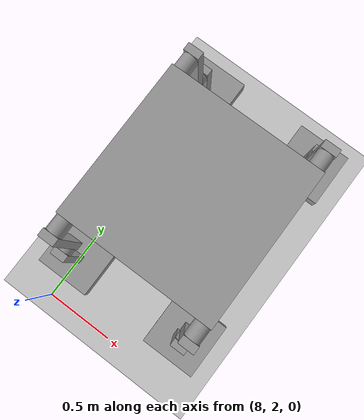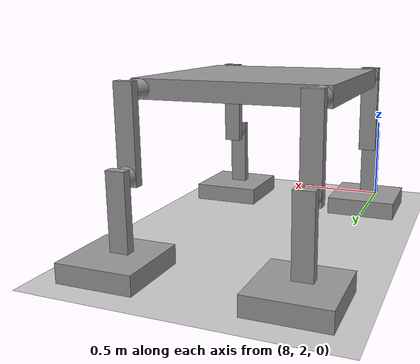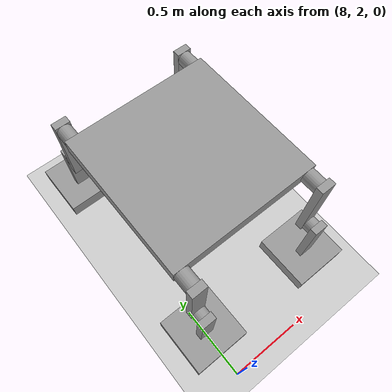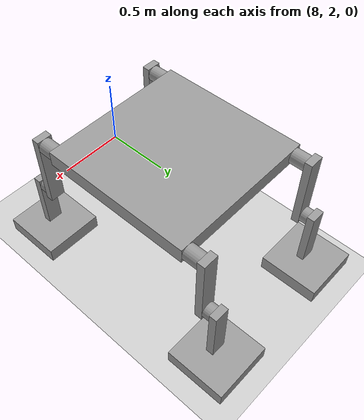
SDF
<sdf version="1.6">
 <world name="default">
  <model name="ground_plane">
   <static>1</static>
   <link name="link">
    <collision name="collision">
     <geometry><plane><normal>0 0 1</normal><size>100 100</size></plane></geometry>
     <surface>
      <contact><collide_bitmask>65535</collide_bitmask></contact>
      <friction><ode><mu>100</mu><mu2>50</mu2></ode></friction>
     </surface>
    </collision>
    <visual name="visual">
     <cast_shadows>0</cast_shadows>
     <geometry><plane><normal>0 0 1</normal><size>100 100</size></plane></geometry>
     <material>
      <script><uri>file://media/materials/scripts/gazebo.material</uri><name>Gazebo/Grey</name></script>
     </material>
    </visual>
   </link>
  </model>
  <model name="HumanoidRobot_0">
   <link name="link_0">
    <inertial>
     <mass>1</mass>
     <inertia>
      <ixx>0.166667</ixx>
      <ixy>0</ixy>
      <ixz>0</ixz>
      <iyy>0.166667</iyy>
      <iyz>0</iyz>
      <izz>0.166667</izz>
     </inertia>
    </inertial>
    <pose>0 0 1 0 -0 0</pose>
    <visual name="visual">
     <geometry><box><size>1 1 0.1</size></box></geometry>
     <material>
      <lighting>1</lighting>
      <script><uri>file://media/materials/scripts/gazebo.material</uri><name>Gazebo/Grey</name></script>
      <shader type="pixel"><normal_map>__default__</normal_map></shader>
      <ambient>0.3 0.3 0.3 1</ambient>
      <diffuse>0.7 0.7 0.7 1</diffuse>
      <specular>0.01 0.01 0.01 1</specular>
      <emissive>0 0 0 1</emissive>
     </material>
    </visual>
    <collision name="collision">
     <geometry><box><size>1 1 0.1</size></box></geometry>
     <surface>
      <friction>
       <ode><mu>1</mu><mu2>1</mu2><fdir1>0 0 0</fdir1><slip1>0</slip1><slip2>0</slip2></ode>
       <torsional>
        <coefficient>1</coefficient>
        <patch_radius>0</patch_radius>
        <surface_radius>0</surface_radius>
        <use_patch_radius>1</use_patch_radius>
        <ode><slip>0</slip></ode>
       </torsional>
      </friction>
      <bounce><restitution_coefficient>0</restitution_coefficient><threshold>1e+06</threshold></bounce>
      <contact>
       <collide_without_contact>0</collide_without_contact>
       <collide_without_contact_bitmask>1</collide_without_contact_bitmask>
       <collide_bitmask>1</collide_bitmask>
       <ode>
        <soft_cfm>0</soft_cfm>
        <soft_erp>0.2</soft_erp>
        <kp>1e+13</kp>
        <kd>1</kd>
        <max_vel>0.01</max_vel>
        <min_depth>0</min_depth>
       </ode>
       <bullet>
        <split_impulse>1</split_impulse>
        <split_impulse_penetration_threshold>-0.01</split_impulse_penetration_threshold>
        <soft_cfm>0</soft_cfm>
        <soft_erp>0.2</soft_erp>
        <kp>1e+13</kp>
        <kd>1</kd>
       </bullet>
      </contact>
     </surface>
    </collision>
   </link>
   <link name="link_0_0">
    <inertial>
     <mass>1</mass>
     <inertia><ixx>0.145833</ixx><ixy>0</ixy><ixz>0</ixz><iyy>0.145833</iyy><iyz>0</iyz><izz>0.125</izz></inertia>
    </inertial>
    <pose>-0.45 -0.550013 1 1.5707 -0 0</pose>
    <visual name="visual">
     <geometry><cylinder><radius>0.05</radius><length>0.1</length></cylinder></geometry>
     <material>
      <lighting>1</lighting>
      <script><uri>file://media/materials/scripts/gazebo.material</uri><name>Gazebo/Grey</name></script>
      <shader type="pixel"><normal_map>__default__</normal_map></shader>
      <ambient>0.3 0.3 0.3 1</ambient>
      <diffuse>0.7 0.7 0.7 1</diffuse>
      <specular>0.01 0.01 0.01 1</specular>
      <emissive>0 0 0 1</emissive>
     </material>
    </visual>
    <collision name="collision">
     <geometry><cylinder><radius>0.05</radius><length>0.1</length></cylinder></geometry>
     <surface>
      <friction>
       <ode><mu>1</mu><mu2>1</mu2><fdir1>0 0 0</fdir1><slip1>0</slip1><slip2>0</slip2></ode>
       <torsional>
        <coefficient>1</coefficient>
        <patch_radius>0</patch_radius>
        <surface_radius>0</surface_radius>
        <use_patch_radius>1</use_patch_radius>
        <ode><slip>0</slip></ode>
       </torsional>
      </friction>
      <bounce><restitution_coefficient>0</restitution_coefficient><threshold>1e+06</threshold></bounce>
      <contact>
       <collide_without_contact>0</collide_without_contact>
       <collide_without_contact_bitmask>1</collide_without_contact_bitmask>
       <collide_bitmask>1</collide_bitmask>
       <ode>
        <soft_cfm>0</soft_cfm>
        <soft_erp>0.2</soft_erp>
        <kp>1e+13</kp>
        <kd>1</kd>
        <max_vel>0.01</max_vel>
        <min_depth>0</min_depth>
       </ode>
       <bullet>
        <split_impulse>1</split_impulse>
        <split_impulse_penetration_threshold>-0.01</split_impulse_penetration_threshold>
        <soft_cfm>0</soft_cfm>
        <soft_erp>0.2</soft_erp>
        <kp>1e+13</kp>
        <kd>1</kd>
       </bullet>
      </contact>
     </surface>
    </collision>
   </link>
   <link name="link_0_0_clone">
    <inertial>
     <mass>1</mass>
     <inertia><ixx>0.145833</ixx><ixy>0</ixy><ixz>0</ixz><iyy>0.145833</iyy><iyz>0</iyz><izz>0.125</izz></inertia>
    </inertial>
    <pose>-0.45 0.550005 1 1.5707 -0 0</pose>
    <visual name="visual_0">
     <geometry><cylinder><radius>0.05</radius><length>0.1</length></cylinder></geometry>
     <material>
      <lighting>1</lighting>
      <script><uri>file://media/materials/scripts/gazebo.material</uri><name>Gazebo/Grey</name></script>
      <shader type="pixel"><normal_map>__default__</normal_map></shader>
      <ambient>0.3 0.3 0.3 1</ambient>
      <diffuse>0.7 0.7 0.7 1</diffuse>
      <specular>0.01 0.01 0.01 1</specular>
      <emissive>0 0 0 1</emissive>
     </material>
    </visual>
    <collision name="collision">
     <geometry><cylinder><radius>0.05</radius><length>0.1</length></cylinder></geometry>
     <surface>
      <friction>
       <ode><mu>1</mu><mu2>1</mu2><fdir1>0 0 0</fdir1><slip1>0</slip1><slip2>0</slip2></ode>
       <torsional>
        <coefficient>1</coefficient>
        <patch_radius>0</patch_radius>
        <surface_radius>0</surface_radius>
        <use_patch_radius>1</use_patch_radius>
        <ode><slip>0</slip></ode>
       </torsional>
      </friction>
      <bounce><restitution_coefficient>0</restitution_coefficient><threshold>1e+06</threshold></bounce>
      <contact>
       <collide_without_contact>0</collide_without_contact>
       <collide_without_contact_bitmask>1</collide_without_contact_bitmask>
       <collide_bitmask>1</collide_bitmask>
       <ode>
        <soft_cfm>0</soft_cfm>
        <soft_erp>0.2</soft_erp>
        <kp>1e+13</kp>
        <kd>1</kd>
        <max_vel>0.01</max_vel>
        <min_depth>0</min_depth>
       </ode>
       <bullet>
        <split_impulse>1</split_impulse>
        <split_impulse_penetration_threshold>-0.01</split_impulse_penetration_threshold>
        <soft_cfm>0</soft_cfm>
        <soft_erp>0.2</soft_erp>
        <kp>1e+13</kp>
        <kd>1</kd>
       </bullet>
      </contact>
     </surface>
    </collision>
   </link>
   <link name="link_0_0_clone_0">
    <inertial>
     <mass>1</mass>
     <inertia><ixx>0.145833</ixx><ixy>0</ixy><ixz>0</ixz><iyy>0.145833</iyy><iyz>0</iyz><izz>0.125</izz></inertia>
    </inertial>
    <pose>0.45 -0.550005 1 1.5707 -0 0</pose>
    <visual name="visual_0">
     <geometry><cylinder><radius>0.05</radius><length>0.1</length></cylinder></geometry>
     <material>
      <lighting>1</lighting>
      <script><uri>file://media/materials/scripts/gazebo.material</uri><name>Gazebo/Grey</name></script>
      <shader type="pixel"><normal_map>__default__</normal_map></shader>
      <ambient>0.3 0.3 0.3 1</ambient>
      <diffuse>0.7 0.7 0.7 1</diffuse>
      <specular>0.01 0.01 0.01 1</specular>
      <emissive>0 0 0 1</emissive>
     </material>
    </visual>
    <collision name="collision">
     <geometry><cylinder><radius>0.05</radius><length>0.1</length></cylinder></geometry>
     <surface>
      <friction>
       <ode><mu>1</mu><mu2>1</mu2><fdir1>0 0 0</fdir1><slip1>0</slip1><slip2>0</slip2></ode>
       <torsional>
        <coefficient>1</coefficient>
        <patch_radius>0</patch_radius>
        <surface_radius>0</surface_radius>
        <use_patch_radius>1</use_patch_radius>
        <ode><slip>0</slip></ode>
       </torsional>
      </friction>
      <bounce><restitution_coefficient>0</restitution_coefficient><threshold>1e+06</threshold></bounce>
      <contact>
       <collide_without_contact>0</collide_without_contact>
       <collide_without_contact_bitmask>1</collide_without_contact_bitmask>
       <collide_bitmask>1</collide_bitmask>
       <ode>
        <soft_cfm>0</soft_cfm>
        <soft_erp>0.2</soft_erp>
        <kp>1e+13</kp>
        <kd>1</kd>
        <max_vel>0.01</max_vel>
        <min_depth>0</min_depth>
       </ode>
       <bullet>
        <split_impulse>1</split_impulse>
        <split_impulse_penetration_threshold>-0.01</split_impulse_penetration_threshold>
        <soft_cfm>0</soft_cfm>
        <soft_erp>0.2</soft_erp>
        <kp>1e+13</kp>
        <kd>1</kd>
       </bullet>
      </contact>
     </surface>
    </collision>
   </link>
   <link name="link_0_0_clone_1">
    <inertial>
     <mass>1</mass>
     <inertia><ixx>0.145833</ixx><ixy>0</ixy><ixz>0</ixz><iyy>0.145833</iyy><iyz>0</iyz><izz>0.125</izz></inertia>
    </inertial>
    <pose>0.45 0.550005 1 1.5707 -0 0</pose>
    <visual name="visual_0">
     <geometry><cylinder><radius>0.05</radius><length>0.1</length></cylinder></geometry>
     <material>
      <lighting>1</lighting>
      <script><uri>file://media/materials/scripts/gazebo.material</uri><name>Gazebo/Grey</name></script>
      <shader type="pixel"><normal_map>__default__</normal_map></shader>
      <ambient>0.3 0.3 0.3 1</ambient>
      <diffuse>0.7 0.7 0.7 1</diffuse>
      <specular>0.01 0.01 0.01 1</specular>
      <emissive>0 0 0 1</emissive>
     </material>
    </visual>
    <collision name="collision">
     <geometry><cylinder><radius>0.05</radius><length>0.1</length></cylinder></geometry>
     <surface>
      <friction>
       <ode><mu>1</mu><mu2>1</mu2><fdir1>0 0 0</fdir1><slip1>0</slip1><slip2>0</slip2></ode>
       <torsional>
        <coefficient>1</coefficient>
        <patch_radius>0</patch_radius>
        <surface_radius>0</surface_radius>
        <use_patch_radius>1</use_patch_radius>
        <ode><slip>0</slip></ode>
       </torsional>
      </friction>
      <bounce><restitution_coefficient>0</restitution_coefficient><threshold>1e+06</threshold></bounce>
      <contact>
       <collide_without_contact>0</collide_without_contact>
       <collide_without_contact_bitmask>1</collide_without_contact_bitmask>
       <collide_bitmask>1</collide_bitmask>
       <ode>
        <soft_cfm>0</soft_cfm>
        <soft_erp>0.2</soft_erp>
        <kp>1e+13</kp>
        <kd>1</kd>
        <max_vel>0.01</max_vel>
        <min_depth>0</min_depth>
       </ode>
       <bullet>
        <split_impulse>1</split_impulse>
        <split_impulse_penetration_threshold>-0.01</split_impulse_penetration_threshold>
        <soft_cfm>0</soft_cfm>
        <soft_erp>0.2</soft_erp>
        <kp>1e+13</kp>
        <kd>1</kd>
       </bullet>
      </contact>
     </surface>
    </collision>
   </link>
   <link name="link_0_0_clone_clone">
    <inertial>
     <mass>1</mass>
     <inertia><ixx>0.145833</ixx><ixy>0</ixy><ixz>0</ixz><iyy>0.145833</iyy><iyz>0</iyz><izz>0.125</izz></inertia>
    </inertial>
    <pose>-0.45 0.650015 0.60001 1.5707 -0 0</pose>
    <visual name="visual_0">
     <geometry><cylinder><radius>0.05</radius><length>0.1</length></cylinder></geometry>
     <material>
      <lighting>1</lighting>
      <script><uri>file://media/materials/scripts/gazebo.material</uri><name>Gazebo/Grey</name></script>
      <shader type="pixel"><normal_map>__default__</normal_map></shader>
      <ambient>0.3 0.3 0.3 1</ambient>
      <diffuse>0.7 0.7 0.7 1</diffuse>
      <specular>0.01 0.01 0.01 1</specular>
      <emissive>0 0 0 1</emissive>
     </material>
    </visual>
    <collision name="collision">
     <geometry><cylinder><radius>0.05</radius><length>0.1</length></cylinder></geometry>
     <surface>
      <friction>
       <ode><mu>1</mu><mu2>1</mu2><fdir1>0 0 0</fdir1><slip1>0</slip1><slip2>0</slip2></ode>
       <torsional>
        <coefficient>1</coefficient>
        <patch_radius>0</patch_radius>
        <surface_radius>0</surface_radius>
        <use_patch_radius>1</use_patch_radius>
        <ode><slip>0</slip></ode>
       </torsional>
      </friction>
      <bounce><restitution_coefficient>0</restitution_coefficient><threshold>1e+06</threshold></bounce>
      <contact>
       <collide_without_contact>0</collide_without_contact>
       <collide_without_contact_bitmask>1</collide_without_contact_bitmask>
       <collide_bitmask>1</collide_bitmask>
       <ode>
        <soft_cfm>0</soft_cfm>
        <soft_erp>0.2</soft_erp>
        <kp>1e+13</kp>
        <kd>1</kd>
        <max_vel>0.01</max_vel>
        <min_depth>0</min_depth>
       </ode>
       <bullet>
        <split_impulse>1</split_impulse>
        <split_impulse_penetration_threshold>-0.01</split_impulse_penetration_threshold>
        <soft_cfm>0</soft_cfm>
        <soft_erp>0.2</soft_erp>
        <kp>1e+13</kp>
        <kd>1</kd>
       </bullet>
      </contact>
     </surface>
    </collision>
   </link>
   <link name="link_0_0_clone_clone_0">
    <inertial>
     <mass>1</mass>
     <inertia><ixx>0.145833</ixx><ixy>0</ixy><ixz>0</ixz><iyy>0.145833</iyy><iyz>0</iyz><izz>0.125</izz></inertia>
    </inertial>
    <pose>0.45 0.650015 0.60001 1.5707 -0 0</pose>
    <visual name="visual_0">
     <geometry><cylinder><radius>0.05</radius><length>0.1</length></cylinder></geometry>
     <material>
      <lighting>1</lighting>
      <script><uri>file://media/materials/scripts/gazebo.material</uri><name>Gazebo/Grey</name></script>
      <shader type="pixel"><normal_map>__default__</normal_map></shader>
      <ambient>0.3 0.3 0.3 1</ambient>
      <diffuse>0.7 0.7 0.7 1</diffuse>
      <specular>0.01 0.01 0.01 1</specular>
      <emissive>0 0 0 1</emissive>
     </material>
    </visual>
    <collision name="collision">
     <geometry><cylinder><radius>0.05</radius><length>0.1</length></cylinder></geometry>
     <surface>
      <friction>
       <ode><mu>1</mu><mu2>1</mu2><fdir1>0 0 0</fdir1><slip1>0</slip1><slip2>0</slip2></ode>
       <torsional>
        <coefficient>1</coefficient>
        <patch_radius>0</patch_radius>
        <surface_radius>0</surface_radius>
        <use_patch_radius>1</use_patch_radius>
        <ode><slip>0</slip></ode>
       </torsional>
      </friction>
      <bounce><restitution_coefficient>0</restitution_coefficient><threshold>1e+06</threshold></bounce>
      <contact>
       <collide_without_contact>0</collide_without_contact>
       <collide_without_contact_bitmask>1</collide_without_contact_bitmask>
       <collide_bitmask>1</collide_bitmask>
       <ode>
        <soft_cfm>0</soft_cfm>
        <soft_erp>0.2</soft_erp>
        <kp>1e+13</kp>
        <kd>1</kd>
        <max_vel>0.01</max_vel>
        <min_depth>0</min_depth>
       </ode>
       <bullet>
        <split_impulse>1</split_impulse>
        <split_impulse_penetration_threshold>-0.01</split_impulse_penetration_threshold>
        <soft_cfm>0</soft_cfm>
        <soft_erp>0.2</soft_erp>
        <kp>1e+13</kp>
        <kd>1</kd>
       </bullet>
      </contact>
     </surface>
    </collision>
   </link>
   <link name="link_0_0_clone_clone_1">
    <inertial>
     <mass>1</mass>
     <inertia><ixx>0.145833</ixx><ixy>0</ixy><ixz>0</ixz><iyy>0.145833</iyy><iyz>0</iyz><izz>0.125</izz></inertia>
    </inertial>
    <pose>0.45 -0.650015 0.60001 1.5707 -0 0</pose>
    <visual name="visual_0">
     <geometry><cylinder><radius>0.05</radius><length>0.1</length></cylinder></geometry>
     <material>
      <lighting>1</lighting>
      <script><uri>file://media/materials/scripts/gazebo.material</uri><name>Gazebo/Grey</name></script>
      <shader type="pixel"><normal_map>__default__</normal_map></shader>
      <ambient>0.3 0.3 0.3 1</ambient>
      <diffuse>0.7 0.7 0.7 1</diffuse>
      <specular>0.01 0.01 0.01 1</specular>
      <emissive>0 0 0 1</emissive>
     </material>
    </visual>
    <collision name="collision">
     <geometry><cylinder><radius>0.05</radius><length>0.1</length></cylinder></geometry>
     <surface>
      <friction>
       <ode><mu>1</mu><mu2>1</mu2><fdir1>0 0 0</fdir1><slip1>0</slip1><slip2>0</slip2></ode>
       <torsional>
        <coefficient>1</coefficient>
        <patch_radius>0</patch_radius>
        <surface_radius>0</surface_radius>
        <use_patch_radius>1</use_patch_radius>
        <ode><slip>0</slip></ode>
       </torsional>
      </friction>
      <bounce><restitution_coefficient>0</restitution_coefficient><threshold>1e+06</threshold></bounce>
      <contact>
       <collide_without_contact>0</collide_without_contact>
       <collide_without_contact_bitmask>1</collide_without_contact_bitmask>
       <collide_bitmask>1</collide_bitmask>
       <ode>
        <soft_cfm>0</soft_cfm>
        <soft_erp>0.2</soft_erp>
        <kp>1e+13</kp>
        <kd>1</kd>
        <max_vel>0.01</max_vel>
        <min_depth>0</min_depth>
       </ode>
       <bullet>
        <split_impulse>1</split_impulse>
        <split_impulse_penetration_threshold>-0.01</split_impulse_penetration_threshold>
        <soft_cfm>0</soft_cfm>
        <soft_erp>0.2</soft_erp>
        <kp>1e+13</kp>
        <kd>1</kd>
       </bullet>
      </contact>
     </surface>
    </collision>
   </link>
   <link name="link_0_0_clone_clone_2">
    <inertial>
     <mass>1</mass>
     <inertia><ixx>0.145833</ixx><ixy>0</ixy><ixz>0</ixz><iyy>0.145833</iyy><iyz>0</iyz><izz>0.125</izz></inertia>
    </inertial>
    <pose>-0.45 -0.650023 0.60001 1.5707 -0 0</pose>
    <visual name="visual_0">
     <geometry><cylinder><radius>0.05</radius><length>0.1</length></cylinder></geometry>
     <material>
      <lighting>1</lighting>
      <script><uri>file://media/materials/scripts/gazebo.material</uri><name>Gazebo/Grey</name></script>
      <shader type="pixel"><normal_map>__default__</normal_map></shader>
      <ambient>0.3 0.3 0.3 1</ambient>
      <diffuse>0.7 0.7 0.7 1</diffuse>
      <specular>0.01 0.01 0.01 1</specular>
      <emissive>0 0 0 1</emissive>
     </material>
    </visual>
    <collision name="collision">
     <geometry><cylinder><radius>0.05</radius><length>0.1</length></cylinder></geometry>
     <surface>
      <friction>
       <ode><mu>1</mu><mu2>1</mu2><fdir1>0 0 0</fdir1><slip1>0</slip1><slip2>0</slip2></ode>
       <torsional>
        <coefficient>1</coefficient>
        <patch_radius>0</patch_radius>
        <surface_radius>0</surface_radius>
        <use_patch_radius>1</use_patch_radius>
        <ode><slip>0</slip></ode>
       </torsional>
      </friction>
      <bounce><restitution_coefficient>0</restitution_coefficient><threshold>1e+06</threshold></bounce>
      <contact>
       <collide_without_contact>0</collide_without_contact>
       <collide_without_contact_bitmask>1</collide_without_contact_bitmask>
       <collide_bitmask>1</collide_bitmask>
       <ode>
        <soft_cfm>0</soft_cfm>
        <soft_erp>0.2</soft_erp>
        <kp>1e+13</kp>
        <kd>1</kd>
        <max_vel>0.01</max_vel>
        <min_depth>0</min_depth>
       </ode>
       <bullet>
        <split_impulse>1</split_impulse>
        <split_impulse_penetration_threshold>-0.01</split_impulse_penetration_threshold>
        <soft_cfm>0</soft_cfm>
        <soft_erp>0.2</soft_erp>
        <kp>1e+13</kp>
        <kd>1</kd>
       </bullet>
      </contact>
     </surface>
    </collision>
   </link>
   <link name="link_0_1">
    <inertial>
     <mass>1</mass>
     <inertia>
      <ixx>0.166667</ixx>
      <ixy>0</ixy>
      <ixz>0</ixz>
      <iyy>0.166667</iyy>
      <iyz>0</iyz>
      <izz>0.166667</izz>
     </inertia>
    </inertial>
    <pose>-0.439136 0.748383 0.200014 0 -0 0</pose>
    <visual name="visual">
     <geometry><box><size>0.4 0.4 0.1</size></box></geometry>
     <material>
      <lighting>1</lighting>
      <script><uri>file://media/materials/scripts/gazebo.material</uri><name>Gazebo/Grey</name></script>
      <shader type="pixel"><normal_map>__default__</normal_map></shader>
      <ambient>0.3 0.3 0.3 1</ambient>
      <diffuse>0.7 0.7 0.7 1</diffuse>
      <specular>0.01 0.01 0.01 1</specular>
      <emissive>0 0 0 1</emissive>
     </material>
    </visual>
    <collision name="collision">
     <geometry><box><size>0.4 0.4 0.1</size></box></geometry>
     <surface>
      <friction>
       <ode><mu>1</mu><mu2>1</mu2><fdir1>0 0 0</fdir1><slip1>0</slip1><slip2>0</slip2></ode>
       <torsional>
        <coefficient>1</coefficient>
        <patch_radius>0</patch_radius>
        <surface_radius>0</surface_radius>
        <use_patch_radius>1</use_patch_radius>
        <ode><slip>0</slip></ode>
       </torsional>
      </friction>
      <bounce><restitution_coefficient>0</restitution_coefficient><threshold>1e+06</threshold></bounce>
      <contact>
       <collide_without_contact>0</collide_without_contact>
       <collide_without_contact_bitmask>1</collide_without_contact_bitmask>
       <collide_bitmask>1</collide_bitmask>
       <ode>
        <soft_cfm>0</soft_cfm>
        <soft_erp>0.2</soft_erp>
        <kp>1e+13</kp>
        <kd>1</kd>
        <max_vel>0.01</max_vel>
        <min_depth>0</min_depth>
       </ode>
       <bullet>
        <split_impulse>1</split_impulse>
        <split_impulse_penetration_threshold>-0.01</split_impulse_penetration_threshold>
        <soft_cfm>0</soft_cfm>
        <soft_erp>0.2</soft_erp>
        <kp>1e+13</kp>
        <kd>1</kd>
       </bullet>
      </contact>
     </surface>
    </collision>
   </link>
   <link name="link_0_1_clone">
    <inertial>
     <mass>1</mass>
     <inertia>
      <ixx>0.166667</ixx>
      <ixy>0</ixy>
      <ixz>0</ixz>
      <iyy>0.166667</iyy>
      <iyz>0</iyz>
      <izz>0.166667</izz>
     </inertia>
    </inertial>
    <pose>0.460864 0.748383 0.200014 0 -0 0</pose>
    <visual name="visual_0">
     <geometry><box><size>0.4 0.4 0.1</size></box></geometry>
     <material>
      <lighting>1</lighting>
      <script><uri>file://media/materials/scripts/gazebo.material</uri><name>Gazebo/Grey</name></script>
      <shader type="pixel"><normal_map>__default__</normal_map></shader>
      <ambient>0.3 0.3 0.3 1</ambient>
      <diffuse>0.7 0.7 0.7 1</diffuse>
      <specular>0.01 0.01 0.01 1</specular>
      <emissive>0 0 0 1</emissive>
     </material>
    </visual>
    <collision name="collision">
     <geometry><box><size>0.4 0.4 0.1</size></box></geometry>
     <surface>
      <friction>
       <ode><mu>1</mu><mu2>1</mu2><fdir1>0 0 0</fdir1><slip1>0</slip1><slip2>0</slip2></ode>
       <torsional>
        <coefficient>1</coefficient>
        <patch_radius>0</patch_radius>
        <surface_radius>0</surface_radius>
        <use_patch_radius>1</use_patch_radius>
        <ode><slip>0</slip></ode>
       </torsional>
      </friction>
      <bounce><restitution_coefficient>0</restitution_coefficient><threshold>1e+06</threshold></bounce>
      <contact>
       <collide_without_contact>0</collide_without_contact>
       <collide_without_contact_bitmask>1</collide_without_contact_bitmask>
       <collide_bitmask>1</collide_bitmask>
       <ode>
        <soft_cfm>0</soft_cfm>
        <soft_erp>0.2</soft_erp>
        <kp>1e+13</kp>
        <kd>1</kd>
        <max_vel>0.01</max_vel>
        <min_depth>0</min_depth>
       </ode>
       <bullet>
        <split_impulse>1</split_impulse>
        <split_impulse_penetration_threshold>-0.01</split_impulse_penetration_threshold>
        <soft_cfm>0</soft_cfm>
        <soft_erp>0.2</soft_erp>
        <kp>1e+13</kp>
        <kd>1</kd>
       </bullet>
      </contact>
     </surface>
    </collision>
   </link>
   <link name="link_0_1_clone_0">
    <inertial>
     <mass>1</mass>
     <inertia>
      <ixx>0.166667</ixx>
      <ixy>0</ixy>
      <ixz>0</ixz>
      <iyy>0.166667</iyy>
      <iyz>0</iyz>
      <izz>0.166667</izz>
     </inertia>
    </inertial>
    <pose>0.460864 -0.701655 0.200014 0 -0 0</pose>
    <visual name="visual_0">
     <geometry><box><size>0.4 0.4 0.1</size></box></geometry>
     <material>
      <lighting>1</lighting>
      <script><uri>file://media/materials/scripts/gazebo.material</uri><name>Gazebo/Grey</name></script>
      <shader type="pixel"><normal_map>__default__</normal_map></shader>
      <ambient>0.3 0.3 0.3 1</ambient>
      <diffuse>0.7 0.7 0.7 1</diffuse>
      <specular>0.01 0.01 0.01 1</specular>
      <emissive>0 0 0 1</emissive>
     </material>
    </visual>
    <collision name="collision">
     <geometry><box><size>0.4 0.4 0.1</size></box></geometry>
     <surface>
      <friction>
       <ode><mu>1</mu><mu2>1</mu2><fdir1>0 0 0</fdir1><slip1>0</slip1><slip2>0</slip2></ode>
       <torsional>
        <coefficient>1</coefficient>
        <patch_radius>0</patch_radius>
        <surface_radius>0</surface_radius>
        <use_patch_radius>1</use_patch_radius>
        <ode><slip>0</slip></ode>
       </torsional>
      </friction>
      <bounce><restitution_coefficient>0</restitution_coefficient><threshold>1e+06</threshold></bounce>
      <contact>
       <collide_without_contact>0</collide_without_contact>
       <collide_without_contact_bitmask>1</collide_without_contact_bitmask>
       <collide_bitmask>1</collide_bitmask>
       <ode>
        <soft_cfm>0</soft_cfm>
        <soft_erp>0.2</soft_erp>
        <kp>1e+13</kp>
        <kd>1</kd>
        <max_vel>0.01</max_vel>
        <min_depth>0</min_depth>
       </ode>
       <bullet>
        <split_impulse>1</split_impulse>
        <split_impulse_penetration_threshold>-0.01</split_impulse_penetration_threshold>
        <soft_cfm>0</soft_cfm>
        <soft_erp>0.2</soft_erp>
        <kp>1e+13</kp>
        <kd>1</kd>
       </bullet>
      </contact>
     </surface>
    </collision>
   </link>
   <link name="link_0_1_clone_1">
    <inertial>
     <mass>1</mass>
     <inertia>
      <ixx>0.166667</ixx>
      <ixy>0</ixy>
      <ixz>0</ixz>
      <iyy>0.166667</iyy>
      <iyz>0</iyz>
      <izz>0.166667</izz>
     </inertia>
    </inertial>
    <pose>-0.439136 -0.701664 0.200014 0 -0 0</pose>
    <visual name="visual_0">
     <geometry><box><size>0.4 0.4 0.1</size></box></geometry>
     <material>
      <lighting>1</lighting>
      <script><uri>file://media/materials/scripts/gazebo.material</uri><name>Gazebo/Grey</name></script>
      <shader type="pixel"><normal_map>__default__</normal_map></shader>
      <ambient>0.3 0.3 0.3 1</ambient>
      <diffuse>0.7 0.7 0.7 1</diffuse>
      <specular>0.01 0.01 0.01 1</specular>
      <emissive>0 0 0 1</emissive>
     </material>
    </visual>
    <collision name="collision">
     <geometry><box><size>0.4 0.4 0.1</size></box></geometry>
     <surface>
      <friction>
       <ode><mu>1</mu><mu2>1</mu2><fdir1>0 0 0</fdir1><slip1>0</slip1><slip2>0</slip2></ode>
       <torsional>
        <coefficient>1</coefficient>
        <patch_radius>0</patch_radius>
        <surface_radius>0</surface_radius>
        <use_patch_radius>1</use_patch_radius>
        <ode><slip>0</slip></ode>
       </torsional>
      </friction>
      <bounce><restitution_coefficient>0</restitution_coefficient><threshold>1e+06</threshold></bounce>
      <contact>
       <collide_without_contact>0</collide_without_contact>
       <collide_without_contact_bitmask>1</collide_without_contact_bitmask>
       <collide_bitmask>1</collide_bitmask>
       <ode>
        <soft_cfm>0</soft_cfm>
        <soft_erp>0.2</soft_erp>
        <kp>1e+13</kp>
        <kd>1</kd>
        <max_vel>0.01</max_vel>
        <min_depth>0</min_depth>
       </ode>
       <bullet>
        <split_impulse>1</split_impulse>
        <split_impulse_penetration_threshold>-0.01</split_impulse_penetration_threshold>
        <soft_cfm>0</soft_cfm>
        <soft_erp>0.2</soft_erp>
        <kp>1e+13</kp>
        <kd>1</kd>
       </bullet>
      </contact>
     </surface>
    </collision>
   </link>
   <link name="link_1">
    <inertial>
     <mass>1</mass>
     <inertia>
      <ixx>0.166667</ixx>
      <ixy>0</ixy>
      <ixz>0</ixz>
      <iyy>0.166667</iyy>
      <iyz>0</iyz>
      <izz>0.166667</izz>
     </inertia>
    </inertial>
    <pose>-0.45 0.62501 0.800005 0 -0 0</pose>
    <visual name="visual">
     <geometry><box><size>0.1 0.05 0.5</size></box></geometry>
     <material>
      <lighting>1</lighting>
      <script><uri>file://media/materials/scripts/gazebo.material</uri><name>Gazebo/Grey</name></script>
      <shader type="pixel"><normal_map>__default__</normal_map></shader>
      <ambient>0.3 0.3 0.3 1</ambient>
      <diffuse>0.7 0.7 0.7 1</diffuse>
      <specular>0.01 0.01 0.01 1</specular>
      <emissive>0 0 0 1</emissive>
     </material>
    </visual>
    <collision name="collision">
     <geometry><box><size>0.1 0.05 0.5</size></box></geometry>
     <surface>
      <friction>
       <ode><mu>1</mu><mu2>1</mu2><fdir1>0 0 0</fdir1><slip1>0</slip1><slip2>0</slip2></ode>
       <torsional>
        <coefficient>1</coefficient>
        <patch_radius>0</patch_radius>
        <surface_radius>0</surface_radius>
        <use_patch_radius>1</use_patch_radius>
        <ode><slip>0</slip></ode>
       </torsional>
      </friction>
      <bounce><restitution_coefficient>0</restitution_coefficient><threshold>1e+06</threshold></bounce>
      <contact>
       <collide_without_contact>0</collide_without_contact>
       <collide_without_contact_bitmask>1</collide_without_contact_bitmask>
       <collide_bitmask>1</collide_bitmask>
       <ode>
        <soft_cfm>0</soft_cfm>
        <soft_erp>0.2</soft_erp>
        <kp>1e+13</kp>
        <kd>1</kd>
        <max_vel>0.01</max_vel>
        <min_depth>0</min_depth>
       </ode>
       <bullet>
        <split_impulse>1</split_impulse>
        <split_impulse_penetration_threshold>-0.01</split_impulse_penetration_threshold>
        <soft_cfm>0</soft_cfm>
        <soft_erp>0.2</soft_erp>
        <kp>1e+13</kp>
        <kd>1</kd>
       </bullet>
      </contact>
     </surface>
    </collision>
   </link>
   <link name="link_1_clone">
    <inertial>
     <mass>1</mass>
     <inertia>
      <ixx>0.166667</ixx>
      <ixy>0</ixy>
      <ixz>0</ixz>
      <iyy>0.166667</iyy>
      <iyz>0</iyz>
      <izz>0.166667</izz>
     </inertia>
    </inertial>
    <pose>0.45 0.62501 0.800005 0 -0 0</pose>
    <visual name="visual">
     <geometry><box><size>0.1 0.05 0.5</size></box></geometry>
     <material>
      <lighting>1</lighting>
      <script><uri>file://media/materials/scripts/gazebo.material</uri><name>Gazebo/Grey</name></script>
      <shader type="pixel"><normal_map>__default__</normal_map></shader>
      <ambient>0.3 0.3 0.3 1</ambient>
      <diffuse>0.7 0.7 0.7 1</diffuse>
      <specular>0.01 0.01 0.01 1</specular>
      <emissive>0 0 0 1</emissive>
     </material>
    </visual>
    <collision name="collision">
     <geometry><box><size>0.1 0.05 0.5</size></box></geometry>
     <surface>
      <friction>
       <ode><mu>1</mu><mu2>1</mu2><fdir1>0 0 0</fdir1><slip1>0</slip1><slip2>0</slip2></ode>
       <torsional>
        <coefficient>1</coefficient>
        <patch_radius>0</patch_radius>
        <surface_radius>0</surface_radius>
        <use_patch_radius>1</use_patch_radius>
        <ode><slip>0</slip></ode>
       </torsional>
      </friction>
      <bounce><restitution_coefficient>0</restitution_coefficient><threshold>1e+06</threshold></bounce>
      <contact>
       <collide_without_contact>0</collide_without_contact>
       <collide_without_contact_bitmask>1</collide_without_contact_bitmask>
       <collide_bitmask>1</collide_bitmask>
       <ode>
        <soft_cfm>0</soft_cfm>
        <soft_erp>0.2</soft_erp>
        <kp>1e+13</kp>
        <kd>1</kd>
        <max_vel>0.01</max_vel>
        <min_depth>0</min_depth>
       </ode>
       <bullet>
        <split_impulse>1</split_impulse>
        <split_impulse_penetration_threshold>-0.01</split_impulse_penetration_threshold>
        <soft_cfm>0</soft_cfm>
        <soft_erp>0.2</soft_erp>
        <kp>1e+13</kp>
        <kd>1</kd>
       </bullet>
      </contact>
     </surface>
    </collision>
   </link>
   <link name="link_1_clone_0">
    <inertial>
     <mass>1</mass>
     <inertia>
      <ixx>0.166667</ixx>
      <ixy>0</ixy>
      <ixz>0</ixz>
      <iyy>0.166667</iyy>
      <iyz>0</iyz>
      <izz>0.166667</izz>
     </inertia>
    </inertial>
    <pose>0.45 -0.62501 0.800005 0 -0 0</pose>
    <visual name="visual">
     <geometry><box><size>0.1 0.05 0.5</size></box></geometry>
     <material>
      <lighting>1</lighting>
      <script><uri>file://media/materials/scripts/gazebo.material</uri><name>Gazebo/Grey</name></script>
      <shader type="pixel"><normal_map>__default__</normal_map></shader>
      <ambient>0.3 0.3 0.3 1</ambient>
      <diffuse>0.7 0.7 0.7 1</diffuse>
      <specular>0.01 0.01 0.01 1</specular>
      <emissive>0 0 0 1</emissive>
     </material>
    </visual>
    <collision name="collision">
     <geometry><box><size>0.1 0.05 0.5</size></box></geometry>
     <surface>
      <friction>
       <ode><mu>1</mu><mu2>1</mu2><fdir1>0 0 0</fdir1><slip1>0</slip1><slip2>0</slip2></ode>
       <torsional>
        <coefficient>1</coefficient>
        <patch_radius>0</patch_radius>
        <surface_radius>0</surface_radius>
        <use_patch_radius>1</use_patch_radius>
        <ode><slip>0</slip></ode>
       </torsional>
      </friction>
      <bounce><restitution_coefficient>0</restitution_coefficient><threshold>1e+06</threshold></bounce>
      <contact>
       <collide_without_contact>0</collide_without_contact>
       <collide_without_contact_bitmask>1</collide_without_contact_bitmask>
       <collide_bitmask>1</collide_bitmask>
       <ode>
        <soft_cfm>0</soft_cfm>
        <soft_erp>0.2</soft_erp>
        <kp>1e+13</kp>
        <kd>1</kd>
        <max_vel>0.01</max_vel>
        <min_depth>0</min_depth>
       </ode>
       <bullet>
        <split_impulse>1</split_impulse>
        <split_impulse_penetration_threshold>-0.01</split_impulse_penetration_threshold>
        <soft_cfm>0</soft_cfm>
        <soft_erp>0.2</soft_erp>
        <kp>1e+13</kp>
        <kd>1</kd>
       </bullet>
      </contact>
     </surface>
    </collision>
   </link>
   <link name="link_1_clone_1">
    <inertial>
     <mass>1</mass>
     <inertia>
      <ixx>0.166667</ixx>
      <ixy>0</ixy>
      <ixz>0</ixz>
      <iyy>0.166667</iyy>
      <iyz>0</iyz>
      <izz>0.166667</izz>
     </inertia>
    </inertial>
    <pose>-0.45 -0.625018 0.800005 0 -0 0</pose>
    <visual name="visual">
     <geometry><box><size>0.1 0.05 0.5</size></box></geometry>
     <material>
      <lighting>1</lighting>
      <script><uri>file://media/materials/scripts/gazebo.material</uri><name>Gazebo/Grey</name></script>
      <shader type="pixel"><normal_map>__default__</normal_map></shader>
      <ambient>0.3 0.3 0.3 1</ambient>
      <diffuse>0.7 0.7 0.7 1</diffuse>
      <specular>0.01 0.01 0.01 1</specular>
      <emissive>0 0 0 1</emissive>
     </material>
    </visual>
    <collision name="collision">
     <geometry><box><size>0.1 0.05 0.5</size></box></geometry>
     <surface>
      <friction>
       <ode><mu>1</mu><mu2>1</mu2><fdir1>0 0 0</fdir1><slip1>0</slip1><slip2>0</slip2></ode>
       <torsional>
        <coefficient>1</coefficient>
        <patch_radius>0</patch_radius>
        <surface_radius>0</surface_radius>
        <use_patch_radius>1</use_patch_radius>
        <ode><slip>0</slip></ode>
       </torsional>
      </friction>
      <bounce><restitution_coefficient>0</restitution_coefficient><threshold>1e+06</threshold></bounce>
      <contact>
       <collide_without_contact>0</collide_without_contact>
       <collide_without_contact_bitmask>1</collide_without_contact_bitmask>
       <collide_bitmask>1</collide_bitmask>
       <ode>
        <soft_cfm>0</soft_cfm>
        <soft_erp>0.2</soft_erp>
        <kp>1e+13</kp>
        <kd>1</kd>
        <max_vel>0.01</max_vel>
        <min_depth>0</min_depth>
       </ode>
       <bullet>
        <split_impulse>1</split_impulse>
        <split_impulse_penetration_threshold>-0.01</split_impulse_penetration_threshold>
        <soft_cfm>0</soft_cfm>
        <soft_erp>0.2</soft_erp>
        <kp>1e+13</kp>
        <kd>1</kd>
       </bullet>
      </contact>
     </surface>
    </collision>
   </link>
   <link name="link_1_clone_2">
    <inertial>
     <mass>1</mass>
     <inertia>
      <ixx>0.166667</ixx>
      <ixy>0</ixy>
      <ixz>0</ixz>
      <iyy>0.166667</iyy>
      <iyz>0</iyz>
      <izz>0.166667</izz>
     </inertia>
    </inertial>
    <pose>-0.45 0.725019 0.400014 0 -0 0</pose>
    <visual name="visual">
     <geometry><box><size>0.1 0.05 0.5</size></box></geometry>
     <material>
      <lighting>1</lighting>
      <script><uri>file://media/materials/scripts/gazebo.material</uri><name>Gazebo/Grey</name></script>
      <shader type="pixel"><normal_map>__default__</normal_map></shader>
      <ambient>0.3 0.3 0.3 1</ambient>
      <diffuse>0.7 0.7 0.7 1</diffuse>
      <specular>0.01 0.01 0.01 1</specular>
      <emissive>0 0 0 1</emissive>
     </material>
    </visual>
    <collision name="collision">
     <geometry><box><size>0.1 0.05 0.5</size></box></geometry>
     <surface>
      <friction>
       <ode><mu>1</mu><mu2>1</mu2><fdir1>0 0 0</fdir1><slip1>0</slip1><slip2>0</slip2></ode>
       <torsional>
        <coefficient>1</coefficient>
        <patch_radius>0</patch_radius>
        <surface_radius>0</surface_radius>
        <use_patch_radius>1</use_patch_radius>
        <ode><slip>0</slip></ode>
       </torsional>
      </friction>
      <bounce><restitution_coefficient>0</restitution_coefficient><threshold>1e+06</threshold></bounce>
      <contact>
       <collide_without_contact>0</collide_without_contact>
       <collide_without_contact_bitmask>1</collide_without_contact_bitmask>
       <collide_bitmask>1</collide_bitmask>
       <ode>
        <soft_cfm>0</soft_cfm>
        <soft_erp>0.2</soft_erp>
        <kp>1e+13</kp>
        <kd>1</kd>
        <max_vel>0.01</max_vel>
        <min_depth>0</min_depth>
       </ode>
       <bullet>
        <split_impulse>1</split_impulse>
        <split_impulse_penetration_threshold>-0.01</split_impulse_penetration_threshold>
        <soft_cfm>0</soft_cfm>
        <soft_erp>0.2</soft_erp>
        <kp>1e+13</kp>
        <kd>1</kd>
       </bullet>
      </contact>
     </surface>
    </collision>
   </link>
   <link name="link_1_clone_3">
    <inertial>
     <mass>1</mass>
     <inertia>
      <ixx>0.166667</ixx>
      <ixy>0</ixy>
      <ixz>0</ixz>
      <iyy>0.166667</iyy>
      <iyz>0</iyz>
      <izz>0.166667</izz>
     </inertia>
    </inertial>
    <pose>0.45 0.725019 0.400014 0 -0 0</pose>
    <visual name="visual">
     <geometry><box><size>0.1 0.05 0.5</size></box></geometry>
     <material>
      <lighting>1</lighting>
      <script><uri>file://media/materials/scripts/gazebo.material</uri><name>Gazebo/Grey</name></script>
      <shader type="pixel"><normal_map>__default__</normal_map></shader>
      <ambient>0.3 0.3 0.3 1</ambient>
      <diffuse>0.7 0.7 0.7 1</diffuse>
      <specular>0.01 0.01 0.01 1</specular>
      <emissive>0 0 0 1</emissive>
     </material>
    </visual>
    <collision name="collision">
     <geometry><box><size>0.1 0.05 0.5</size></box></geometry>
     <surface>
      <friction>
       <ode><mu>1</mu><mu2>1</mu2><fdir1>0 0 0</fdir1><slip1>0</slip1><slip2>0</slip2></ode>
       <torsional>
        <coefficient>1</coefficient>
        <patch_radius>0</patch_radius>
        <surface_radius>0</surface_radius>
        <use_patch_radius>1</use_patch_radius>
        <ode><slip>0</slip></ode>
       </torsional>
      </friction>
      <bounce><restitution_coefficient>0</restitution_coefficient><threshold>1e+06</threshold></bounce>
      <contact>
       <collide_without_contact>0</collide_without_contact>
       <collide_without_contact_bitmask>1</collide_without_contact_bitmask>
       <collide_bitmask>1</collide_bitmask>
       <ode>
        <soft_cfm>0</soft_cfm>
        <soft_erp>0.2</soft_erp>
        <kp>1e+13</kp>
        <kd>1</kd>
        <max_vel>0.01</max_vel>
        <min_depth>0</min_depth>
       </ode>
       <bullet>
        <split_impulse>1</split_impulse>
        <split_impulse_penetration_threshold>-0.01</split_impulse_penetration_threshold>
        <soft_cfm>0</soft_cfm>
        <soft_erp>0.2</soft_erp>
        <kp>1e+13</kp>
        <kd>1</kd>
       </bullet>
      </contact>
     </surface>
    </collision>
   </link>
   <link name="link_1_clone_4">
    <inertial>
     <mass>1</mass>
     <inertia>
      <ixx>0.166667</ixx>
      <ixy>0</ixy>
      <ixz>0</ixz>
      <iyy>0.166667</iyy>
      <iyz>0</iyz>
      <izz>0.166667</izz>
     </inertia>
    </inertial>
    <pose>0.45 -0.725019 0.400014 0 -0 0</pose>
    <visual name="visual">
     <geometry><box><size>0.1 0.05 0.5</size></box></geometry>
     <material>
      <lighting>1</lighting>
      <script><uri>file://media/materials/scripts/gazebo.material</uri><name>Gazebo/Grey</name></script>
      <shader type="pixel"><normal_map>__default__</normal_map></shader>
      <ambient>0.3 0.3 0.3 1</ambient>
      <diffuse>0.7 0.7 0.7 1</diffuse>
      <specular>0.01 0.01 0.01 1</specular>
      <emissive>0 0 0 1</emissive>
     </material>
    </visual>
    <collision name="collision">
     <geometry><box><size>0.1 0.05 0.5</size></box></geometry>
     <surface>
      <friction>
       <ode><mu>1</mu><mu2>1</mu2><fdir1>0 0 0</fdir1><slip1>0</slip1><slip2>0</slip2></ode>
       <torsional>
        <coefficient>1</coefficient>
        <patch_radius>0</patch_radius>
        <surface_radius>0</surface_radius>
        <use_patch_radius>1</use_patch_radius>
        <ode><slip>0</slip></ode>
       </torsional>
      </friction>
      <bounce><restitution_coefficient>0</restitution_coefficient><threshold>1e+06</threshold></bounce>
      <contact>
       <collide_without_contact>0</collide_without_contact>
       <collide_without_contact_bitmask>1</collide_without_contact_bitmask>
       <collide_bitmask>1</collide_bitmask>
       <ode>
        <soft_cfm>0</soft_cfm>
        <soft_erp>0.2</soft_erp>
        <kp>1e+13</kp>
        <kd>1</kd>
        <max_vel>0.01</max_vel>
        <min_depth>0</min_depth>
       </ode>
       <bullet>
        <split_impulse>1</split_impulse>
        <split_impulse_penetration_threshold>-0.01</split_impulse_penetration_threshold>
        <soft_cfm>0</soft_cfm>
        <soft_erp>0.2</soft_erp>
        <kp>1e+13</kp>
        <kd>1</kd>
       </bullet>
      </contact>
     </surface>
    </collision>
   </link>
   <link name="link_1_clone_5">
    <inertial>
     <mass>1</mass>
     <inertia>
      <ixx>0.166667</ixx>
      <ixy>0</ixy>
      <ixz>0</ixz>
      <iyy>0.166667</iyy>
      <iyz>0</iyz>
      <izz>0.166667</izz>
     </inertia>
    </inertial>
    <pose>-0.45 -0.725028 0.400014 0 -0 0</pose>
    <visual name="visual">
     <geometry><box><size>0.1 0.05 0.5</size></box></geometry>
     <material>
      <lighting>1</lighting>
      <script><uri>file://media/materials/scripts/gazebo.material</uri><name>Gazebo/Grey</name></script>
      <shader type="pixel"><normal_map>__default__</normal_map></shader>
      <ambient>0.3 0.3 0.3 1</ambient>
      <diffuse>0.7 0.7 0.7 1</diffuse>
      <specular>0.01 0.01 0.01 1</specular>
      <emissive>0 0 0 1</emissive>
     </material>
    </visual>
    <collision name="collision">
     <geometry><box><size>0.1 0.05 0.5</size></box></geometry>
     <surface>
      <friction>
       <ode><mu>1</mu><mu2>1</mu2><fdir1>0 0 0</fdir1><slip1>0</slip1><slip2>0</slip2></ode>
       <torsional>
        <coefficient>1</coefficient>
        <patch_radius>0</patch_radius>
        <surface_radius>0</surface_radius>
        <use_patch_radius>1</use_patch_radius>
        <ode><slip>0</slip></ode>
       </torsional>
      </friction>
      <bounce><restitution_coefficient>0</restitution_coefficient><threshold>1e+06</threshold></bounce>
      <contact>
       <collide_without_contact>0</collide_without_contact>
       <collide_without_contact_bitmask>1</collide_without_contact_bitmask>
       <collide_bitmask>1</collide_bitmask>
       <ode>
        <soft_cfm>0</soft_cfm>
        <soft_erp>0.2</soft_erp>
        <kp>1e+13</kp>
        <kd>1</kd>
        <max_vel>0.01</max_vel>
        <min_depth>0</min_depth>
       </ode>
       <bullet>
        <split_impulse>1</split_impulse>
        <split_impulse_penetration_threshold>-0.01</split_impulse_penetration_threshold>
        <soft_cfm>0</soft_cfm>
        <soft_erp>0.2</soft_erp>
        <kp>1e+13</kp>
        <kd>1</kd>
       </bullet>
      </contact>
     </surface>
    </collision>
   </link>
   <joint name="link_0_0_JOINT_8" type="fixed">
    <parent>link_0_0</parent>
    <child>link_1_clone_1</child>
    <physics>
     <ode><limit><cfm>0</cfm><erp>0.2</erp></limit><suspension><cfm>0</cfm><erp>0.2</erp></suspension></ode>
    </physics>
   </joint>
   <joint name="link_0_0_clone_0_JOINT_7" type="fixed">
    <parent>link_0_0_clone_0</parent>
    <child>link_1_clone_0</child>
    <physics>
     <ode><limit><cfm>0</cfm><erp>0.2</erp></limit><suspension><cfm>0</cfm><erp>0.2</erp></suspension></ode>
    </physics>
   </joint>
   <joint name="link_0_0_clone_1_JOINT_6" type="fixed">
    <parent>link_0_0_clone_1</parent>
    <child>link_1_clone</child>
    <physics>
     <ode><limit><cfm>0</cfm><erp>0.2</erp></limit><suspension><cfm>0</cfm><erp>0.2</erp></suspension></ode>
    </physics>
   </joint>
   <joint name="link_0_0_clone_JOINT_5" type="fixed">
    <parent>link_0_0_clone</parent>
    <child>link_1</child>
    <physics>
     <ode><limit><cfm>0</cfm><erp>0.2</erp></limit><suspension><cfm>0</cfm><erp>0.2</erp></suspension></ode>
    </physics>
   </joint>
   <joint name="link_0_0_clone_clone_0_JOINT_18" type="revolute">
    <parent>link_0_0_clone_clone_0</parent>
    <child>link_1_clone_3</child>
    <axis>
     <xyz>0 0 1</xyz>
     <use_parent_model_frame>0</use_parent_model_frame>
     <limit>
      <lower>-1.79769e+308</lower>
      <upper>1.79769e+308</upper>
      <effort>-1</effort>
      <velocity>-1</velocity>
     </limit>
     <dynamics>
      <spring_reference>0</spring_reference>
      <spring_stiffness>0</spring_stiffness>
      <damping>0</damping>
      <friction>0</friction>
     </dynamics>
    </axis>
    <physics>
     <ode><limit><cfm>0</cfm><erp>0.2</erp></limit><suspension><cfm>0</cfm><erp>0.2</erp></suspension></ode>
    </physics>
   </joint>
   <joint name="link_0_0_clone_clone_2_JOINT_20" type="revolute">
    <parent>link_0_0_clone_clone_2</parent>
    <child>link_1_clone_5</child>
    <axis>
     <xyz>0 0 1</xyz>
     <use_parent_model_frame>0</use_parent_model_frame>
     <limit>
      <lower>-1.79769e+308</lower>
      <upper>1.79769e+308</upper>
      <effort>-1</effort>
      <velocity>-1</velocity>
     </limit>
     <dynamics>
      <spring_reference>0</spring_reference>
      <spring_stiffness>0</spring_stiffness>
      <damping>0</damping>
      <friction>0</friction>
     </dynamics>
    </axis>
    <physics>
     <ode><limit><cfm>0</cfm><erp>0.2</erp></limit><suspension><cfm>0</cfm><erp>0.2</erp></suspension></ode>
    </physics>
   </joint>
   <joint name="link_0_JOINT_1" type="revolute">
    <parent>link_0</parent>
    <child>link_0_0</child>
    <axis>
     <xyz>0 0 1</xyz>
     <use_parent_model_frame>0</use_parent_model_frame>
     <limit>
      <lower>-1.79769e+308</lower>
      <upper>1.79769e+308</upper>
      <effort>-1</effort>
      <velocity>-1</velocity>
     </limit>
     <dynamics>
      <spring_reference>0</spring_reference>
      <spring_stiffness>0</spring_stiffness>
      <damping>0</damping>
      <friction>0</friction>
     </dynamics>
    </axis>
    <physics>
     <ode><limit><cfm>0</cfm><erp>0.2</erp></limit><suspension><cfm>0</cfm><erp>0.2</erp></suspension></ode>
    </physics>
   </joint>
   <joint name="link_0_JOINT_2" type="revolute">
    <parent>link_0</parent>
    <child>link_0_0_clone</child>
    <axis>
     <xyz>0 0 1</xyz>
     <use_parent_model_frame>0</use_parent_model_frame>
     <limit>
      <lower>-1.79769e+308</lower>
      <upper>1.79769e+308</upper>
      <effort>-1</effort>
      <velocity>-1</velocity>
     </limit>
     <dynamics>
      <spring_reference>0</spring_reference>
      <spring_stiffness>0</spring_stiffness>
      <damping>0</damping>
      <friction>0</friction>
     </dynamics>
    </axis>
    <physics>
     <ode><limit><cfm>0</cfm><erp>0.2</erp></limit><suspension><cfm>0</cfm><erp>0.2</erp></suspension></ode>
    </physics>
   </joint>
   <joint name="link_0_JOINT_3" type="revolute">
    <parent>link_0</parent>
    <child>link_0_0_clone_0</child>
    <axis>
     <xyz>1 0 0</xyz>
     <use_parent_model_frame>0</use_parent_model_frame>
     <limit>
      <lower>-1.79769e+308</lower>
      <upper>1.79769e+308</upper>
      <effort>-1</effort>
      <velocity>-1</velocity>
     </limit>
     <dynamics>
      <spring_reference>0</spring_reference>
      <spring_stiffness>0</spring_stiffness>
      <damping>0</damping>
      <friction>0</friction>
     </dynamics>
    </axis>
    <physics>
     <ode><limit><cfm>0</cfm><erp>0.2</erp></limit><suspension><cfm>0</cfm><erp>0.2</erp></suspension></ode>
    </physics>
   </joint>
   <joint name="link_0_JOINT_4" type="revolute">
    <parent>link_0</parent>
    <child>link_0_0_clone_1</child>
    <axis>
     <xyz>1 0 0</xyz>
     <use_parent_model_frame>0</use_parent_model_frame>
     <limit>
      <lower>-1.79769e+308</lower>
      <upper>1.79769e+308</upper>
      <effort>-1</effort>
      <velocity>-1</velocity>
     </limit>
     <dynamics>
      <spring_reference>0</spring_reference>
      <spring_stiffness>0</spring_stiffness>
      <damping>0</damping>
      <friction>0</friction>
     </dynamics>
    </axis>
    <physics>
     <ode><limit><cfm>0</cfm><erp>0.2</erp></limit><suspension><cfm>0</cfm><erp>0.2</erp></suspension></ode>
    </physics>
   </joint>
   <joint name="link_1_JOINT_14" type="revolute">
    <parent>link_1</parent>
    <child>link_0_0_clone_clone</child>
    <axis>
     <xyz>1 0 0</xyz>
     <use_parent_model_frame>0</use_parent_model_frame>
     <limit>
      <lower>-1.79769e+308</lower>
      <upper>1.79769e+308</upper>
      <effort>-1</effort>
      <velocity>-1</velocity>
     </limit>
     <dynamics>
      <spring_reference>0</spring_reference>
      <spring_stiffness>0</spring_stiffness>
      <damping>0</damping>
      <friction>0</friction>
     </dynamics>
    </axis>
    <physics>
     <ode><limit><cfm>0</cfm><erp>0.2</erp></limit><suspension><cfm>0</cfm><erp>0.2</erp></suspension></ode>
    </physics>
   </joint>
   <joint name="link_1_clone_0_JOINT_15" type="fixed">
    <parent>link_1_clone_0</parent>
    <child>link_0_0_clone_clone_1</child>
    <physics>
     <ode><limit><cfm>0</cfm><erp>0.2</erp></limit><suspension><cfm>0</cfm><erp>0.2</erp></suspension></ode>
    </physics>
   </joint>
   <joint name="link_1_clone_1_JOINT_16" type="revolute">
    <parent>link_1_clone_1</parent>
    <child>link_0_0_clone_clone_2</child>
    <axis>
     <xyz>1 0 0</xyz>
     <use_parent_model_frame>0</use_parent_model_frame>
     <limit>
      <lower>-1.79769e+308</lower>
      <upper>1.79769e+308</upper>
      <effort>-1</effort>
      <velocity>-1</velocity>
     </limit>
     <dynamics>
      <spring_reference>0</spring_reference>
      <spring_stiffness>0</spring_stiffness>
      <damping>0</damping>
      <friction>0</friction>
     </dynamics>
    </axis>
    <physics>
     <ode><limit><cfm>0</cfm><erp>0.2</erp></limit><suspension><cfm>0</cfm><erp>0.2</erp></suspension></ode>
    </physics>
   </joint>
   <joint name="link_1_clone_2_JOINT_17" type="revolute">
    <parent>link_0_0_clone_clone</parent>
    <child>link_1_clone_2</child>
    <axis>
     <xyz>0 0 1</xyz>
     <use_parent_model_frame>0</use_parent_model_frame>
     <limit>
      <lower>-1.79769e+308</lower>
      <upper>1.79769e+308</upper>
      <effort>-1</effort>
      <velocity>-1</velocity>
     </limit>
     <dynamics>
      <spring_reference>0</spring_reference>
      <spring_stiffness>0</spring_stiffness>
      <damping>0</damping>
      <friction>0</friction>
     </dynamics>
    </axis>
    <physics>
     <ode><limit><cfm>0</cfm><erp>0.2</erp></limit><suspension><cfm>0</cfm><erp>0.2</erp></suspension></ode>
    </physics>
   </joint>
   <joint name="link_1_clone_2_JOINT_1" type="fixed">
    <parent>link_1_clone_2</parent>
    <child>link_0_1</child>
    <physics>
     <ode><limit><cfm>0</cfm><erp>0.2</erp></limit><suspension><cfm>0</cfm><erp>0.2</erp></suspension></ode>
    </physics>
   </joint>
   <joint name="link_1_clone_3_JOINT_2" type="fixed">
    <parent>link_1_clone_3</parent>
    <child>link_0_1_clone</child>
    <physics>
     <ode><limit><cfm>0</cfm><erp>0.2</erp></limit><suspension><cfm>0</cfm><erp>0.2</erp></suspension></ode>
    </physics>
   </joint>
   <joint name="link_1_clone_4_JOINT_19" type="revolute">
    <parent>link_0_0_clone_clone_1</parent>
    <child>link_1_clone_4</child>
    <axis>
     <xyz>0 0 1</xyz>
     <use_parent_model_frame>0</use_parent_model_frame>
     <limit>
      <lower>-1.79769e+308</lower>
      <upper>1.79769e+308</upper>
      <effort>-1</effort>
      <velocity>-1</velocity>
     </limit>
     <dynamics>
      <spring_reference>0</spring_reference>
      <spring_stiffness>0</spring_stiffness>
      <damping>0</damping>
      <friction>0</friction>
     </dynamics>
    </axis>
    <physics>
     <ode><limit><cfm>0</cfm><erp>0.2</erp></limit><suspension><cfm>0</cfm><erp>0.2</erp></suspension></ode>
    </physics>
   </joint>
   <joint name="link_1_clone_4_JOINT_4" type="fixed">
    <parent>link_1_clone_4</parent>
    <child>link_0_1_clone_0</child>
    <physics>
     <ode><limit><cfm>0</cfm><erp>0.2</erp></limit><suspension><cfm>0</cfm><erp>0.2</erp></suspension></ode>
    </physics>
   </joint>
   <joint name="link_1_clone_5_JOINT_3" type="fixed">
    <parent>link_1_clone_5</parent>
    <child>link_0_1_clone_1</child>
    <pose>0 0 0 -0.01 -0.02 -0</pose>
    <physics>
     <ode><limit><cfm>0</cfm><erp>0.2</erp></limit><suspension><cfm>0</cfm><erp>0.2</erp></suspension></ode>
    </physics>
   </joint>
   <joint name="link_1_clone_JOINT_13" type="fixed">
    <parent>link_1_clone</parent>
    <child>link_0_0_clone_clone_0</child>
    <physics>
     <ode><limit><cfm>0</cfm><erp>0.2</erp></limit><suspension><cfm>0</cfm><erp>0.2</erp></suspension></ode>
    </physics>
   </joint>
   <static>0</static>
   <pose>8.43529 3.05632 -0.150015 -2e-06 1e-06 0.005821</pose>
   <plugin name="model_push" filename="libmodel_push.so"/>
  </model>
 </world>
</sdf>
